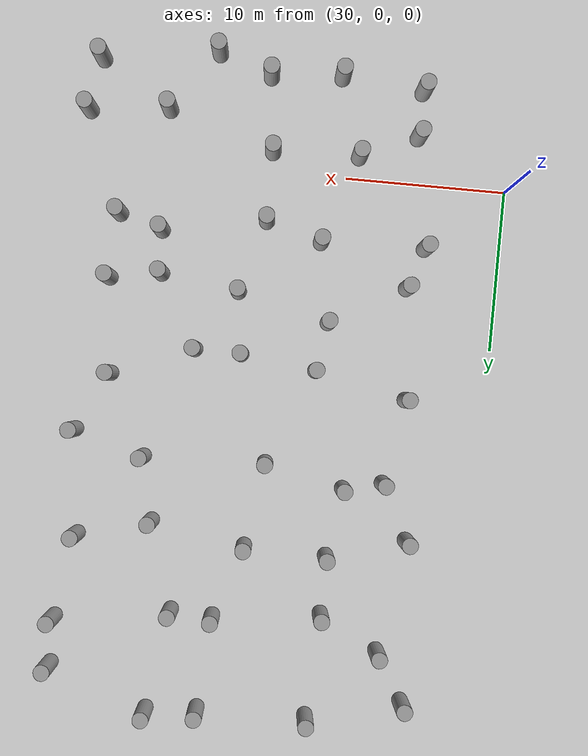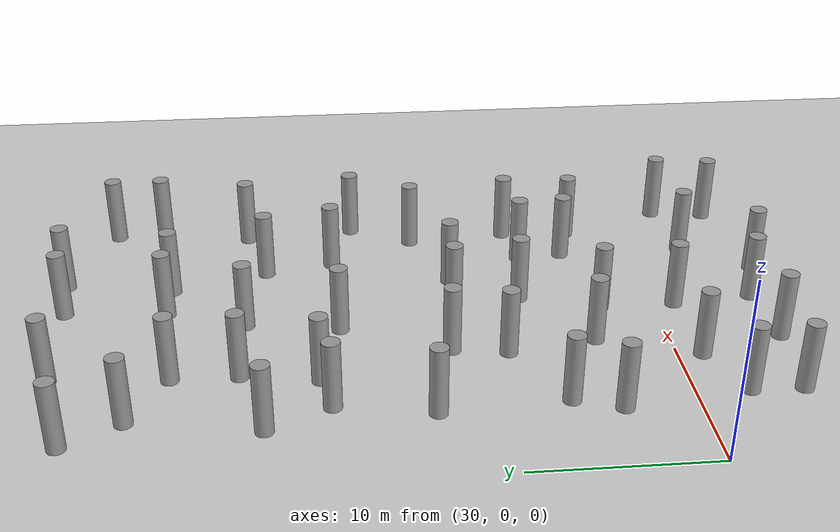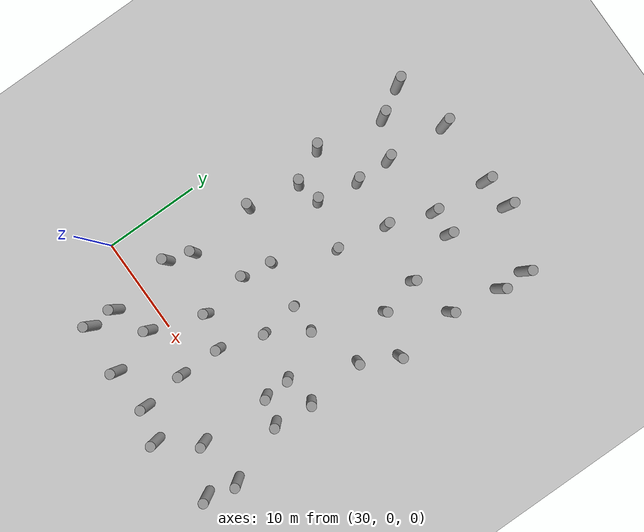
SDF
<sdf version="1.5">
 <world name="circle">
  <model name="ground">
   <static>1</static>
   <link name="link">
    <collision name="collision">
     <geometry><plane><normal>0 0 1</normal><size>100 100</size></plane></geometry>
     <surface><friction><ode><mu>100</mu><mu2>50</mu2></ode></friction></surface>
    </collision>
    <visual name="visual">
     <cast_shadows>0</cast_shadows>
     <geometry><plane><normal>0 0 1</normal><size>100 100</size></plane></geometry>
     <material>
      <script><uri>file://media/materials/scripts/gazebo.material</uri><name>Gazebo/Grey</name></script>
     </material>
    </visual>
    <velocity_decay><linear>0</linear><angular>0</angular></velocity_decay>
   </link>
  </model>
  <model name="unit_cylinder_81">
   <pose>35.6679056417 -5.77542004258 2 3e-06 4e-06 -0</pose>
   <static>1</static>
   <self_collide>1</self_collide>
   <link name="link">
    <inertial>
     <mass>1</mass>
     <inertia><ixx>0.145833</ixx><ixy>0</ixy><ixz>0</ixz><iyy>0.145833</iyy><iyz>0</iyz><izz>0.125</izz></inertia>
    </inertial>
    <collision name="collision">
     <geometry><cylinder><radius>0.5</radius><length>4</length></cylinder></geometry>
    </collision>
    <visual name="visual">
     <geometry><cylinder><radius>0.5</radius><length>4</length></cylinder></geometry>
     <material>
      <script><name>Gazebo/Grey</name><uri>file://media/materials/scripts/gazebo.material</uri></script>
     </material>
    </visual>
    <collision name="cyl_collision">
     <geometry><cylinder><radius>0.5</radius><length>4</length></cylinder></geometry>
    </collision>
    <sensor name="my_contact" type="contact">
     <contact><collision>cyl_collision</collision></contact>
     <update_rate>5</update_rate>
    </sensor>
   </link>
  </model>
  <model name="unit_cylinder_82">
   <pose>35.7263103291 -2.90438020218 2 3e-06 4e-06 -0</pose>
   <static>1</static>
   <self_collide>1</self_collide>
   <link name="link">
    <inertial>
     <mass>1</mass>
     <inertia><ixx>0.145833</ixx><ixy>0</ixy><ixz>0</ixz><iyy>0.145833</iyy><iyz>0</iyz><izz>0.125</izz></inertia>
    </inertial>
    <collision name="collision">
     <geometry><cylinder><radius>0.5</radius><length>4</length></cylinder></geometry>
    </collision>
    <visual name="visual">
     <geometry><cylinder><radius>0.5</radius><length>4</length></cylinder></geometry>
     <material>
      <script><name>Gazebo/Grey</name><uri>file://media/materials/scripts/gazebo.material</uri></script>
     </material>
    </visual>
    <collision name="cyl_collision">
     <geometry><cylinder><radius>0.5</radius><length>4</length></cylinder></geometry>
    </collision>
    <sensor name="my_contact" type="contact">
     <contact><collision>cyl_collision</collision></contact>
     <update_rate>5</update_rate>
    </sensor>
   </link>
  </model>
  <model name="unit_cylinder_83">
   <pose>34.7116669281 4.00510411653 2 3e-06 4e-06 -0</pose>
   <static>1</static>
   <self_collide>1</self_collide>
   <link name="link">
    <inertial>
     <mass>1</mass>
     <inertia><ixx>0.145833</ixx><ixy>0</ixy><ixz>0</ixz><iyy>0.145833</iyy><iyz>0</iyz><izz>0.125</izz></inertia>
    </inertial>
    <collision name="collision">
     <geometry><cylinder><radius>0.5</radius><length>4</length></cylinder></geometry>
    </collision>
    <visual name="visual">
     <geometry><cylinder><radius>0.5</radius><length>4</length></cylinder></geometry>
     <material>
      <script><name>Gazebo/Grey</name><uri>file://media/materials/scripts/gazebo.material</uri></script>
     </material>
    </visual>
    <collision name="cyl_collision">
     <geometry><cylinder><radius>0.5</radius><length>4</length></cylinder></geometry>
    </collision>
    <sensor name="my_contact" type="contact">
     <contact><collision>cyl_collision</collision></contact>
     <update_rate>5</update_rate>
    </sensor>
   </link>
  </model>
  <model name="unit_cylinder_84">
   <pose>35.6197564915 6.57755300147 2 3e-06 4e-06 -0</pose>
   <static>1</static>
   <self_collide>1</self_collide>
   <link name="link">
    <inertial>
     <mass>1</mass>
     <inertia><ixx>0.145833</ixx><ixy>0</ixy><ixz>0</ixz><iyy>0.145833</iyy><iyz>0</iyz><izz>0.125</izz></inertia>
    </inertial>
    <collision name="collision">
     <geometry><cylinder><radius>0.5</radius><length>4</length></cylinder></geometry>
    </collision>
    <visual name="visual">
     <geometry><cylinder><radius>0.5</radius><length>4</length></cylinder></geometry>
     <material>
      <script><name>Gazebo/Grey</name><uri>file://media/materials/scripts/gazebo.material</uri></script>
     </material>
    </visual>
    <collision name="cyl_collision">
     <geometry><cylinder><radius>0.5</radius><length>4</length></cylinder></geometry>
    </collision>
    <sensor name="my_contact" type="contact">
     <contact><collision>cyl_collision</collision></contact>
     <update_rate>5</update_rate>
    </sensor>
   </link>
  </model>
  <model name="unit_cylinder_85">
   <pose>35.0802317343 13.5566739813 2 3e-06 4e-06 -0</pose>
   <static>1</static>
   <self_collide>1</self_collide>
   <link name="link">
    <inertial>
     <mass>1</mass>
     <inertia><ixx>0.145833</ixx><ixy>0</ixy><ixz>0</ixz><iyy>0.145833</iyy><iyz>0</iyz><izz>0.125</izz></inertia>
    </inertial>
    <collision name="collision">
     <geometry><cylinder><radius>0.5</radius><length>4</length></cylinder></geometry>
    </collision>
    <visual name="visual">
     <geometry><cylinder><radius>0.5</radius><length>4</length></cylinder></geometry>
     <material>
      <script><name>Gazebo/Grey</name><uri>file://media/materials/scripts/gazebo.material</uri></script>
     </material>
    </visual>
    <collision name="cyl_collision">
     <geometry><cylinder><radius>0.5</radius><length>4</length></cylinder></geometry>
    </collision>
    <sensor name="my_contact" type="contact">
     <contact><collision>cyl_collision</collision></contact>
     <update_rate>5</update_rate>
    </sensor>
   </link>
  </model>
  <model name="unit_cylinder_86">
   <pose>36.0503890332 18.8871869542 2 3e-06 4e-06 -0</pose>
   <static>1</static>
   <self_collide>1</self_collide>
   <link name="link">
    <inertial>
     <mass>1</mass>
     <inertia><ixx>0.145833</ixx><ixy>0</ixy><ixz>0</ixz><iyy>0.145833</iyy><iyz>0</iyz><izz>0.125</izz></inertia>
    </inertial>
    <collision name="collision">
     <geometry><cylinder><radius>0.5</radius><length>4</length></cylinder></geometry>
    </collision>
    <visual name="visual">
     <geometry><cylinder><radius>0.5</radius><length>4</length></cylinder></geometry>
     <material>
      <script><name>Gazebo/Grey</name><uri>file://media/materials/scripts/gazebo.material</uri></script>
     </material>
    </visual>
    <collision name="cyl_collision">
     <geometry><cylinder><radius>0.5</radius><length>4</length></cylinder></geometry>
    </collision>
    <sensor name="my_contact" type="contact">
     <contact><collision>cyl_collision</collision></contact>
     <update_rate>5</update_rate>
    </sensor>
   </link>
  </model>
  <model name="unit_cylinder_87">
   <pose>34.2919485609 22.3360521421 2 3e-06 4e-06 -0</pose>
   <static>1</static>
   <self_collide>1</self_collide>
   <link name="link">
    <inertial>
     <mass>1</mass>
     <inertia><ixx>0.145833</ixx><ixy>0</ixy><ixz>0</ixz><iyy>0.145833</iyy><iyz>0</iyz><izz>0.125</izz></inertia>
    </inertial>
    <collision name="collision">
     <geometry><cylinder><radius>0.5</radius><length>4</length></cylinder></geometry>
    </collision>
    <visual name="visual">
     <geometry><cylinder><radius>0.5</radius><length>4</length></cylinder></geometry>
     <material>
      <script><name>Gazebo/Grey</name><uri>file://media/materials/scripts/gazebo.material</uri></script>
     </material>
    </visual>
    <collision name="cyl_collision">
     <geometry><cylinder><radius>0.5</radius><length>4</length></cylinder></geometry>
    </collision>
    <sensor name="my_contact" type="contact">
     <contact><collision>cyl_collision</collision></contact>
     <update_rate>5</update_rate>
    </sensor>
   </link>
  </model>
  <model name="unit_cylinder_88">
   <pose>35.5304291818 29.3945848965 2 3e-06 4e-06 -0</pose>
   <static>1</static>
   <self_collide>1</self_collide>
   <link name="link">
    <inertial>
     <mass>1</mass>
     <inertia><ixx>0.145833</ixx><ixy>0</ixy><ixz>0</ixz><iyy>0.145833</iyy><iyz>0</iyz><izz>0.125</izz></inertia>
    </inertial>
    <collision name="collision">
     <geometry><cylinder><radius>0.5</radius><length>4</length></cylinder></geometry>
    </collision>
    <visual name="visual">
     <geometry><cylinder><radius>0.5</radius><length>4</length></cylinder></geometry>
     <material>
      <script><name>Gazebo/Grey</name><uri>file://media/materials/scripts/gazebo.material</uri></script>
     </material>
    </visual>
    <collision name="cyl_collision">
     <geometry><cylinder><radius>0.5</radius><length>4</length></cylinder></geometry>
    </collision>
    <sensor name="my_contact" type="contact">
     <contact><collision>cyl_collision</collision></contact>
     <update_rate>5</update_rate>
    </sensor>
   </link>
  </model>
  <model name="unit_cylinder_89">
   <pose>33.7355179222 32.4193531505 2 3e-06 4e-06 -0</pose>
   <static>1</static>
   <self_collide>1</self_collide>
   <link name="link">
    <inertial>
     <mass>1</mass>
     <inertia><ixx>0.145833</ixx><ixy>0</ixy><ixz>0</ixz><iyy>0.145833</iyy><iyz>0</iyz><izz>0.125</izz></inertia>
    </inertial>
    <collision name="collision">
     <geometry><cylinder><radius>0.5</radius><length>4</length></cylinder></geometry>
    </collision>
    <visual name="visual">
     <geometry><cylinder><radius>0.5</radius><length>4</length></cylinder></geometry>
     <material>
      <script><name>Gazebo/Grey</name><uri>file://media/materials/scripts/gazebo.material</uri></script>
     </material>
    </visual>
    <collision name="cyl_collision">
     <geometry><cylinder><radius>0.5</radius><length>4</length></cylinder></geometry>
    </collision>
    <sensor name="my_contact" type="contact">
     <contact><collision>cyl_collision</collision></contact>
     <update_rate>5</update_rate>
    </sensor>
   </link>
  </model>
  <model name="unit_cylinder_96">
   <pose>40.7755859444 -6.25657437621 2 3e-06 4e-06 -0</pose>
   <static>1</static>
   <self_collide>1</self_collide>
   <link name="link">
    <inertial>
     <mass>1</mass>
     <inertia><ixx>0.145833</ixx><ixy>0</ixy><ixz>0</ixz><iyy>0.145833</iyy><iyz>0</iyz><izz>0.125</izz></inertia>
    </inertial>
    <collision name="collision">
     <geometry><cylinder><radius>0.5</radius><length>4</length></cylinder></geometry>
    </collision>
    <visual name="visual">
     <geometry><cylinder><radius>0.5</radius><length>4</length></cylinder></geometry>
     <material>
      <script><name>Gazebo/Grey</name><uri>file://media/materials/scripts/gazebo.material</uri></script>
     </material>
    </visual>
    <collision name="cyl_collision">
     <geometry><cylinder><radius>0.5</radius><length>4</length></cylinder></geometry>
    </collision>
    <sensor name="my_contact" type="contact">
     <contact><collision>cyl_collision</collision></contact>
     <update_rate>5</update_rate>
    </sensor>
   </link>
  </model>
  <model name="unit_cylinder_97">
   <pose>39.3007211047 -1.38284202193 2 3e-06 4e-06 -0</pose>
   <static>1</static>
   <self_collide>1</self_collide>
   <link name="link">
    <inertial>
     <mass>1</mass>
     <inertia><ixx>0.145833</ixx><ixy>0</ixy><ixz>0</ixz><iyy>0.145833</iyy><iyz>0</iyz><izz>0.125</izz></inertia>
    </inertial>
    <collision name="collision">
     <geometry><cylinder><radius>0.5</radius><length>4</length></cylinder></geometry>
    </collision>
    <visual name="visual">
     <geometry><cylinder><radius>0.5</radius><length>4</length></cylinder></geometry>
     <material>
      <script><name>Gazebo/Grey</name><uri>file://media/materials/scripts/gazebo.material</uri></script>
     </material>
    </visual>
    <collision name="cyl_collision">
     <geometry><cylinder><radius>0.5</radius><length>4</length></cylinder></geometry>
    </collision>
    <sensor name="my_contact" type="contact">
     <contact><collision>cyl_collision</collision></contact>
     <update_rate>5</update_rate>
    </sensor>
   </link>
  </model>
  <model name="unit_cylinder_98">
   <pose>41.2231888702 4.15944503703 2 3e-06 4e-06 -0</pose>
   <static>1</static>
   <self_collide>1</self_collide>
   <link name="link">
    <inertial>
     <mass>1</mass>
     <inertia><ixx>0.145833</ixx><ixy>0</ixy><ixz>0</ixz><iyy>0.145833</iyy><iyz>0</iyz><izz>0.125</izz></inertia>
    </inertial>
    <collision name="collision">
     <geometry><cylinder><radius>0.5</radius><length>4</length></cylinder></geometry>
    </collision>
    <visual name="visual">
     <geometry><cylinder><radius>0.5</radius><length>4</length></cylinder></geometry>
     <material>
      <script><name>Gazebo/Grey</name><uri>file://media/materials/scripts/gazebo.material</uri></script>
     </material>
    </visual>
    <collision name="cyl_collision">
     <geometry><cylinder><radius>0.5</radius><length>4</length></cylinder></geometry>
    </collision>
    <sensor name="my_contact" type="contact">
     <contact><collision>cyl_collision</collision></contact>
     <update_rate>5</update_rate>
    </sensor>
   </link>
  </model>
  <model name="unit_cylinder_99">
   <pose>40.3456004214 9.14816743767 2 3e-06 4e-06 -0</pose>
   <static>1</static>
   <self_collide>1</self_collide>
   <link name="link">
    <inertial>
     <mass>1</mass>
     <inertia><ixx>0.145833</ixx><ixy>0</ixy><ixz>0</ixz><iyy>0.145833</iyy><iyz>0</iyz><izz>0.125</izz></inertia>
    </inertial>
    <collision name="collision">
     <geometry><cylinder><radius>0.5</radius><length>4</length></cylinder></geometry>
    </collision>
    <visual name="visual">
     <geometry><cylinder><radius>0.5</radius><length>4</length></cylinder></geometry>
     <material>
      <script><name>Gazebo/Grey</name><uri>file://media/materials/scripts/gazebo.material</uri></script>
     </material>
    </visual>
    <collision name="cyl_collision">
     <geometry><cylinder><radius>0.5</radius><length>4</length></cylinder></geometry>
    </collision>
    <sensor name="my_contact" type="contact">
     <contact><collision>cyl_collision</collision></contact>
     <update_rate>5</update_rate>
    </sensor>
   </link>
  </model>
  <model name="unit_cylinder_100">
   <pose>40.8603254077 12.2200159221 2 3e-06 4e-06 -0</pose>
   <static>1</static>
   <self_collide>1</self_collide>
   <link name="link">
    <inertial>
     <mass>1</mass>
     <inertia><ixx>0.145833</ixx><ixy>0</ixy><ixz>0</ixz><iyy>0.145833</iyy><iyz>0</iyz><izz>0.125</izz></inertia>
    </inertial>
    <collision name="collision">
     <geometry><cylinder><radius>0.5</radius><length>4</length></cylinder></geometry>
    </collision>
    <visual name="visual">
     <geometry><cylinder><radius>0.5</radius><length>4</length></cylinder></geometry>
     <material>
      <script><name>Gazebo/Grey</name><uri>file://media/materials/scripts/gazebo.material</uri></script>
     </material>
    </visual>
    <collision name="cyl_collision">
     <geometry><cylinder><radius>0.5</radius><length>4</length></cylinder></geometry>
    </collision>
    <sensor name="my_contact" type="contact">
     <contact><collision>cyl_collision</collision></contact>
     <update_rate>5</update_rate>
    </sensor>
   </link>
  </model>
  <model name="unit_cylinder_101">
   <pose>38.523181458 19.4359597811 2 3e-06 4e-06 -0</pose>
   <static>1</static>
   <self_collide>1</self_collide>
   <link name="link">
    <inertial>
     <mass>1</mass>
     <inertia><ixx>0.145833</ixx><ixy>0</ixy><ixz>0</ixz><iyy>0.145833</iyy><iyz>0</iyz><izz>0.125</izz></inertia>
    </inertial>
    <collision name="collision">
     <geometry><cylinder><radius>0.5</radius><length>4</length></cylinder></geometry>
    </collision>
    <visual name="visual">
     <geometry><cylinder><radius>0.5</radius><length>4</length></cylinder></geometry>
     <material>
      <script><name>Gazebo/Grey</name><uri>file://media/materials/scripts/gazebo.material</uri></script>
     </material>
    </visual>
    <collision name="cyl_collision">
     <geometry><cylinder><radius>0.5</radius><length>4</length></cylinder></geometry>
    </collision>
    <sensor name="my_contact" type="contact">
     <contact><collision>cyl_collision</collision></contact>
     <update_rate>5</update_rate>
    </sensor>
   </link>
  </model>
  <model name="unit_cylinder_102">
   <pose>39.2182623341 23.7290542533 2 3e-06 4e-06 -0</pose>
   <static>1</static>
   <self_collide>1</self_collide>
   <link name="link">
    <inertial>
     <mass>1</mass>
     <inertia><ixx>0.145833</ixx><ixy>0</ixy><ixz>0</ixz><iyy>0.145833</iyy><iyz>0</iyz><izz>0.125</izz></inertia>
    </inertial>
    <collision name="collision">
     <geometry><cylinder><radius>0.5</radius><length>4</length></cylinder></geometry>
    </collision>
    <visual name="visual">
     <geometry><cylinder><radius>0.5</radius><length>4</length></cylinder></geometry>
     <material>
      <script><name>Gazebo/Grey</name><uri>file://media/materials/scripts/gazebo.material</uri></script>
     </material>
    </visual>
    <collision name="cyl_collision">
     <geometry><cylinder><radius>0.5</radius><length>4</length></cylinder></geometry>
    </collision>
    <sensor name="my_contact" type="contact">
     <contact><collision>cyl_collision</collision></contact>
     <update_rate>5</update_rate>
    </sensor>
   </link>
  </model>
  <model name="unit_cylinder_103">
   <pose>39.22450284 27.395508864 2 3e-06 4e-06 -0</pose>
   <static>1</static>
   <self_collide>1</self_collide>
   <link name="link">
    <inertial>
     <mass>1</mass>
     <inertia><ixx>0.145833</ixx><ixy>0</ixy><ixz>0</ixz><iyy>0.145833</iyy><iyz>0</iyz><izz>0.125</izz></inertia>
    </inertial>
    <collision name="collision">
     <geometry><cylinder><radius>0.5</radius><length>4</length></cylinder></geometry>
    </collision>
    <visual name="visual">
     <geometry><cylinder><radius>0.5</radius><length>4</length></cylinder></geometry>
     <material>
      <script><name>Gazebo/Grey</name><uri>file://media/materials/scripts/gazebo.material</uri></script>
     </material>
    </visual>
    <collision name="cyl_collision">
     <geometry><cylinder><radius>0.5</radius><length>4</length></cylinder></geometry>
    </collision>
    <sensor name="my_contact" type="contact">
     <contact><collision>cyl_collision</collision></contact>
     <update_rate>5</update_rate>
    </sensor>
   </link>
  </model>
  <model name="unit_cylinder_104">
   <pose>39.6252936841 33.8614767986 2 3e-06 4e-06 -0</pose>
   <static>1</static>
   <self_collide>1</self_collide>
   <link name="link">
    <inertial>
     <mass>1</mass>
     <inertia><ixx>0.145833</ixx><ixy>0</ixy><ixz>0</ixz><iyy>0.145833</iyy><iyz>0</iyz><izz>0.125</izz></inertia>
    </inertial>
    <collision name="collision">
     <geometry><cylinder><radius>0.5</radius><length>4</length></cylinder></geometry>
    </collision>
    <visual name="visual">
     <geometry><cylinder><radius>0.5</radius><length>4</length></cylinder></geometry>
     <material>
      <script><name>Gazebo/Grey</name><uri>file://media/materials/scripts/gazebo.material</uri></script>
     </material>
    </visual>
    <collision name="cyl_collision">
     <geometry><cylinder><radius>0.5</radius><length>4</length></cylinder></geometry>
    </collision>
    <sensor name="my_contact" type="contact">
     <contact><collision>cyl_collision</collision></contact>
     <update_rate>5</update_rate>
    </sensor>
   </link>
  </model>
  <model name="unit_cylinder_111">
   <pose>45.2180552925 -5.92310617465 2 3e-06 4e-06 -0</pose>
   <static>1</static>
   <self_collide>1</self_collide>
   <link name="link">
    <inertial>
     <mass>1</mass>
     <inertia><ixx>0.145833</ixx><ixy>0</ixy><ixz>0</ixz><iyy>0.145833</iyy><iyz>0</iyz><izz>0.125</izz></inertia>
    </inertial>
    <collision name="collision">
     <geometry><cylinder><radius>0.5</radius><length>4</length></cylinder></geometry>
    </collision>
    <visual name="visual">
     <geometry><cylinder><radius>0.5</radius><length>4</length></cylinder></geometry>
     <material>
      <script><name>Gazebo/Grey</name><uri>file://media/materials/scripts/gazebo.material</uri></script>
     </material>
    </visual>
    <collision name="cyl_collision">
     <geometry><cylinder><radius>0.5</radius><length>4</length></cylinder></geometry>
    </collision>
    <sensor name="my_contact" type="contact">
     <contact><collision>cyl_collision</collision></contact>
     <update_rate>5</update_rate>
    </sensor>
   </link>
  </model>
  <model name="unit_cylinder_112">
   <pose>44.7206645837 -1.22734781911 2 3e-06 4e-06 -0</pose>
   <static>1</static>
   <self_collide>1</self_collide>
   <link name="link">
    <inertial>
     <mass>1</mass>
     <inertia><ixx>0.145833</ixx><ixy>0</ixy><ixz>0</ixz><iyy>0.145833</iyy><iyz>0</iyz><izz>0.125</izz></inertia>
    </inertial>
    <collision name="collision">
     <geometry><cylinder><radius>0.5</radius><length>4</length></cylinder></geometry>
    </collision>
    <visual name="visual">
     <geometry><cylinder><radius>0.5</radius><length>4</length></cylinder></geometry>
     <material>
      <script><name>Gazebo/Grey</name><uri>file://media/materials/scripts/gazebo.material</uri></script>
     </material>
    </visual>
    <collision name="cyl_collision">
     <geometry><cylinder><radius>0.5</radius><length>4</length></cylinder></geometry>
    </collision>
    <sensor name="my_contact" type="contact">
     <contact><collision>cyl_collision</collision></contact>
     <update_rate>5</update_rate>
    </sensor>
   </link>
  </model>
  <model name="unit_cylinder_113">
   <pose>44.7268193166 3.12864957752 2 3e-06 4e-06 -0</pose>
   <static>1</static>
   <self_collide>1</self_collide>
   <link name="link">
    <inertial>
     <mass>1</mass>
     <inertia><ixx>0.145833</ixx><ixy>0</ixy><ixz>0</ixz><iyy>0.145833</iyy><iyz>0</iyz><izz>0.125</izz></inertia>
    </inertial>
    <collision name="collision">
     <geometry><cylinder><radius>0.5</radius><length>4</length></cylinder></geometry>
    </collision>
    <visual name="visual">
     <geometry><cylinder><radius>0.5</radius><length>4</length></cylinder></geometry>
     <material>
      <script><name>Gazebo/Grey</name><uri>file://media/materials/scripts/gazebo.material</uri></script>
     </material>
    </visual>
    <collision name="cyl_collision">
     <geometry><cylinder><radius>0.5</radius><length>4</length></cylinder></geometry>
    </collision>
    <sensor name="my_contact" type="contact">
     <contact><collision>cyl_collision</collision></contact>
     <update_rate>5</update_rate>
    </sensor>
   </link>
  </model>
  <model name="unit_cylinder_114">
   <pose>46.103092692 7.68619504246 2 3e-06 4e-06 -0</pose>
   <static>1</static>
   <self_collide>1</self_collide>
   <link name="link">
    <inertial>
     <mass>1</mass>
     <inertia><ixx>0.145833</ixx><ixy>0</ixy><ixz>0</ixz><iyy>0.145833</iyy><iyz>0</iyz><izz>0.125</izz></inertia>
    </inertial>
    <collision name="collision">
     <geometry><cylinder><radius>0.5</radius><length>4</length></cylinder></geometry>
    </collision>
    <visual name="visual">
     <geometry><cylinder><radius>0.5</radius><length>4</length></cylinder></geometry>
     <material>
      <script><name>Gazebo/Grey</name><uri>file://media/materials/scripts/gazebo.material</uri></script>
     </material>
    </visual>
    <collision name="cyl_collision">
     <geometry><cylinder><radius>0.5</radius><length>4</length></cylinder></geometry>
    </collision>
    <sensor name="my_contact" type="contact">
     <contact><collision>cyl_collision</collision></contact>
     <update_rate>5</update_rate>
    </sensor>
   </link>
  </model>
  <model name="unit_cylinder_115">
   <pose>45.5978227257 11.590894487 2 3e-06 4e-06 -0</pose>
   <static>1</static>
   <self_collide>1</self_collide>
   <link name="link">
    <inertial>
     <mass>1</mass>
     <inertia><ixx>0.145833</ixx><ixy>0</ixy><ixz>0</ixz><iyy>0.145833</iyy><iyz>0</iyz><izz>0.125</izz></inertia>
    </inertial>
    <collision name="collision">
     <geometry><cylinder><radius>0.5</radius><length>4</length></cylinder></geometry>
    </collision>
    <visual name="visual">
     <geometry><cylinder><radius>0.5</radius><length>4</length></cylinder></geometry>
     <material>
      <script><name>Gazebo/Grey</name><uri>file://media/materials/scripts/gazebo.material</uri></script>
     </material>
    </visual>
    <collision name="cyl_collision">
     <geometry><cylinder><radius>0.5</radius><length>4</length></cylinder></geometry>
    </collision>
    <sensor name="my_contact" type="contact">
     <contact><collision>cyl_collision</collision></contact>
     <update_rate>5</update_rate>
    </sensor>
   </link>
  </model>
  <model name="unit_cylinder_116">
   <pose>43.5087032859 18.2419314645 2 3e-06 4e-06 -0</pose>
   <static>1</static>
   <self_collide>1</self_collide>
   <link name="link">
    <inertial>
     <mass>1</mass>
     <inertia><ixx>0.145833</ixx><ixy>0</ixy><ixz>0</ixz><iyy>0.145833</iyy><iyz>0</iyz><izz>0.125</izz></inertia>
    </inertial>
    <collision name="collision">
     <geometry><cylinder><radius>0.5</radius><length>4</length></cylinder></geometry>
    </collision>
    <visual name="visual">
     <geometry><cylinder><radius>0.5</radius><length>4</length></cylinder></geometry>
     <material>
      <script><name>Gazebo/Grey</name><uri>file://media/materials/scripts/gazebo.material</uri></script>
     </material>
    </visual>
    <collision name="cyl_collision">
     <geometry><cylinder><radius>0.5</radius><length>4</length></cylinder></geometry>
    </collision>
    <sensor name="my_contact" type="contact">
     <contact><collision>cyl_collision</collision></contact>
     <update_rate>5</update_rate>
    </sensor>
   </link>
  </model>
  <model name="unit_cylinder_117">
   <pose>44.3696159318 23.5488141204 2 3e-06 4e-06 -0</pose>
   <static>1</static>
   <self_collide>1</self_collide>
   <link name="link">
    <inertial>
     <mass>1</mass>
     <inertia><ixx>0.145833</ixx><ixy>0</ixy><ixz>0</ixz><iyy>0.145833</iyy><iyz>0</iyz><izz>0.125</izz></inertia>
    </inertial>
    <collision name="collision">
     <geometry><cylinder><radius>0.5</radius><length>4</length></cylinder></geometry>
    </collision>
    <visual name="visual">
     <geometry><cylinder><radius>0.5</radius><length>4</length></cylinder></geometry>
     <material>
      <script><name>Gazebo/Grey</name><uri>file://media/materials/scripts/gazebo.material</uri></script>
     </material>
    </visual>
    <collision name="cyl_collision">
     <geometry><cylinder><radius>0.5</radius><length>4</length></cylinder></geometry>
    </collision>
    <sensor name="my_contact" type="contact">
     <contact><collision>cyl_collision</collision></contact>
     <update_rate>5</update_rate>
    </sensor>
   </link>
  </model>
  <model name="unit_cylinder_118">
   <pose>45.9830754507 28.1023713864 2 3e-06 4e-06 -0</pose>
   <static>1</static>
   <self_collide>1</self_collide>
   <link name="link">
    <inertial>
     <mass>1</mass>
     <inertia><ixx>0.145833</ixx><ixy>0</ixy><ixz>0</ixz><iyy>0.145833</iyy><iyz>0</iyz><izz>0.125</izz></inertia>
    </inertial>
    <collision name="collision">
     <geometry><cylinder><radius>0.5</radius><length>4</length></cylinder></geometry>
    </collision>
    <visual name="visual">
     <geometry><cylinder><radius>0.5</radius><length>4</length></cylinder></geometry>
     <material>
      <script><name>Gazebo/Grey</name><uri>file://media/materials/scripts/gazebo.material</uri></script>
     </material>
    </visual>
    <collision name="cyl_collision">
     <geometry><cylinder><radius>0.5</radius><length>4</length></cylinder></geometry>
    </collision>
    <sensor name="my_contact" type="contact">
     <contact><collision>cyl_collision</collision></contact>
     <update_rate>5</update_rate>
    </sensor>
   </link>
  </model>
  <model name="unit_cylinder_119">
   <pose>46.4542948218 33.9674066257 2 3e-06 4e-06 -0</pose>
   <static>1</static>
   <self_collide>1</self_collide>
   <link name="link">
    <inertial>
     <mass>1</mass>
     <inertia><ixx>0.145833</ixx><ixy>0</ixy><ixz>0</ixz><iyy>0.145833</iyy><iyz>0</iyz><izz>0.125</izz></inertia>
    </inertial>
    <collision name="collision">
     <geometry><cylinder><radius>0.5</radius><length>4</length></cylinder></geometry>
    </collision>
    <visual name="visual">
     <geometry><cylinder><radius>0.5</radius><length>4</length></cylinder></geometry>
     <material>
      <script><name>Gazebo/Grey</name><uri>file://media/materials/scripts/gazebo.material</uri></script>
     </material>
    </visual>
    <collision name="cyl_collision">
     <geometry><cylinder><radius>0.5</radius><length>4</length></cylinder></geometry>
    </collision>
    <sensor name="my_contact" type="contact">
     <contact><collision>cyl_collision</collision></contact>
     <update_rate>5</update_rate>
    </sensor>
   </link>
  </model>
  <model name="unit_cylinder_126">
   <pose>48.5535509362 -7.08814719624 2 3e-06 4e-06 -0</pose>
   <static>1</static>
   <self_collide>1</self_collide>
   <link name="link">
    <inertial>
     <mass>1</mass>
     <inertia><ixx>0.145833</ixx><ixy>0</ixy><ixz>0</ixz><iyy>0.145833</iyy><iyz>0</iyz><izz>0.125</izz></inertia>
    </inertial>
    <collision name="collision">
     <geometry><cylinder><radius>0.5</radius><length>4</length></cylinder></geometry>
    </collision>
    <visual name="visual">
     <geometry><cylinder><radius>0.5</radius><length>4</length></cylinder></geometry>
     <material>
      <script><name>Gazebo/Grey</name><uri>file://media/materials/scripts/gazebo.material</uri></script>
     </material>
    </visual>
    <collision name="cyl_collision">
     <geometry><cylinder><radius>0.5</radius><length>4</length></cylinder></geometry>
    </collision>
    <sensor name="my_contact" type="contact">
     <contact><collision>cyl_collision</collision></contact>
     <update_rate>5</update_rate>
    </sensor>
   </link>
  </model>
  <model name="unit_cylinder_127">
   <pose>51.3671489111 -3.31135918351 2 3e-06 4e-06 -0</pose>
   <static>1</static>
   <self_collide>1</self_collide>
   <link name="link">
    <inertial>
     <mass>1</mass>
     <inertia><ixx>0.145833</ixx><ixy>0</ixy><ixz>0</ixz><iyy>0.145833</iyy><iyz>0</iyz><izz>0.125</izz></inertia>
    </inertial>
    <collision name="collision">
     <geometry><cylinder><radius>0.5</radius><length>4</length></cylinder></geometry>
    </collision>
    <visual name="visual">
     <geometry><cylinder><radius>0.5</radius><length>4</length></cylinder></geometry>
     <material>
      <script><name>Gazebo/Grey</name><uri>file://media/materials/scripts/gazebo.material</uri></script>
     </material>
    </visual>
    <collision name="cyl_collision">
     <geometry><cylinder><radius>0.5</radius><length>4</length></cylinder></geometry>
    </collision>
    <sensor name="my_contact" type="contact">
     <contact><collision>cyl_collision</collision></contact>
     <update_rate>5</update_rate>
    </sensor>
   </link>
  </model>
  <model name="unit_cylinder_128">
   <pose>51.2308198335 4.26325609476 2 3e-06 4e-06 -0</pose>
   <static>1</static>
   <self_collide>1</self_collide>
   <link name="link">
    <inertial>
     <mass>1</mass>
     <inertia><ixx>0.145833</ixx><ixy>0</ixy><ixz>0</ixz><iyy>0.145833</iyy><iyz>0</iyz><izz>0.125</izz></inertia>
    </inertial>
    <collision name="collision">
     <geometry><cylinder><radius>0.5</radius><length>4</length></cylinder></geometry>
    </collision>
    <visual name="visual">
     <geometry><cylinder><radius>0.5</radius><length>4</length></cylinder></geometry>
     <material>
      <script><name>Gazebo/Grey</name><uri>file://media/materials/scripts/gazebo.material</uri></script>
     </material>
    </visual>
    <collision name="cyl_collision">
     <geometry><cylinder><radius>0.5</radius><length>4</length></cylinder></geometry>
    </collision>
    <sensor name="my_contact" type="contact">
     <contact><collision>cyl_collision</collision></contact>
     <update_rate>5</update_rate>
    </sensor>
   </link>
  </model>
  <model name="unit_cylinder_129">
   <pose>51.0292293405 6.96864109769 2 3e-06 4e-06 -0</pose>
   <static>1</static>
   <self_collide>1</self_collide>
   <link name="link">
    <inertial>
     <mass>1</mass>
     <inertia><ixx>0.145833</ixx><ixy>0</ixy><ixz>0</ixz><iyy>0.145833</iyy><iyz>0</iyz><izz>0.125</izz></inertia>
    </inertial>
    <collision name="collision">
     <geometry><cylinder><radius>0.5</radius><length>4</length></cylinder></geometry>
    </collision>
    <visual name="visual">
     <geometry><cylinder><radius>0.5</radius><length>4</length></cylinder></geometry>
     <material>
      <script><name>Gazebo/Grey</name><uri>file://media/materials/scripts/gazebo.material</uri></script>
     </material>
    </visual>
    <collision name="cyl_collision">
     <geometry><cylinder><radius>0.5</radius><length>4</length></cylinder></geometry>
    </collision>
    <sensor name="my_contact" type="contact">
     <contact><collision>cyl_collision</collision></contact>
     <update_rate>5</update_rate>
    </sensor>
   </link>
  </model>
  <model name="unit_cylinder_130">
   <pose>48.5220555371 11.5272876935 2 3e-06 4e-06 -0</pose>
   <static>1</static>
   <self_collide>1</self_collide>
   <link name="link">
    <inertial>
     <mass>1</mass>
     <inertia><ixx>0.145833</ixx><ixy>0</ixy><ixz>0</ixz><iyy>0.145833</iyy><iyz>0</iyz><izz>0.125</izz></inertia>
    </inertial>
    <collision name="collision">
     <geometry><cylinder><radius>0.5</radius><length>4</length></cylinder></geometry>
    </collision>
    <visual name="visual">
     <geometry><cylinder><radius>0.5</radius><length>4</length></cylinder></geometry>
     <material>
      <script><name>Gazebo/Grey</name><uri>file://media/materials/scripts/gazebo.material</uri></script>
     </material>
    </visual>
    <collision name="cyl_collision">
     <geometry><cylinder><radius>0.5</radius><length>4</length></cylinder></geometry>
    </collision>
    <sensor name="my_contact" type="contact">
     <contact><collision>cyl_collision</collision></contact>
     <update_rate>5</update_rate>
    </sensor>
   </link>
  </model>
  <model name="unit_cylinder_131">
   <pose>51.1612378467 18.5054300248 2 3e-06 4e-06 -0</pose>
   <static>1</static>
   <self_collide>1</self_collide>
   <link name="link">
    <inertial>
     <mass>1</mass>
     <inertia><ixx>0.145833</ixx><ixy>0</ixy><ixz>0</ixz><iyy>0.145833</iyy><iyz>0</iyz><izz>0.125</izz></inertia>
    </inertial>
    <collision name="collision">
     <geometry><cylinder><radius>0.5</radius><length>4</length></cylinder></geometry>
    </collision>
    <visual name="visual">
     <geometry><cylinder><radius>0.5</radius><length>4</length></cylinder></geometry>
     <material>
      <script><name>Gazebo/Grey</name><uri>file://media/materials/scripts/gazebo.material</uri></script>
     </material>
    </visual>
    <collision name="cyl_collision">
     <geometry><cylinder><radius>0.5</radius><length>4</length></cylinder></geometry>
    </collision>
    <sensor name="my_contact" type="contact">
     <contact><collision>cyl_collision</collision></contact>
     <update_rate>5</update_rate>
    </sensor>
   </link>
  </model>
  <model name="unit_cylinder_132">
   <pose>50.2971076823 22.4771663791 2 3e-06 4e-06 -0</pose>
   <static>1</static>
   <self_collide>1</self_collide>
   <link name="link">
    <inertial>
     <mass>1</mass>
     <inertia><ixx>0.145833</ixx><ixy>0</ixy><ixz>0</ixz><iyy>0.145833</iyy><iyz>0</iyz><izz>0.125</izz></inertia>
    </inertial>
    <collision name="collision">
     <geometry><cylinder><radius>0.5</radius><length>4</length></cylinder></geometry>
    </collision>
    <visual name="visual">
     <geometry><cylinder><radius>0.5</radius><length>4</length></cylinder></geometry>
     <material>
      <script><name>Gazebo/Grey</name><uri>file://media/materials/scripts/gazebo.material</uri></script>
     </material>
    </visual>
    <collision name="cyl_collision">
     <geometry><cylinder><radius>0.5</radius><length>4</length></cylinder></geometry>
    </collision>
    <sensor name="my_contact" type="contact">
     <contact><collision>cyl_collision</collision></contact>
     <update_rate>5</update_rate>
    </sensor>
   </link>
  </model>
  <model name="unit_cylinder_133">
   <pose>48.6066538753 27.9673389506 2 3e-06 4e-06 -0</pose>
   <static>1</static>
   <self_collide>1</self_collide>
   <link name="link">
    <inertial>
     <mass>1</mass>
     <inertia><ixx>0.145833</ixx><ixy>0</ixy><ixz>0</ixz><iyy>0.145833</iyy><iyz>0</iyz><izz>0.125</izz></inertia>
    </inertial>
    <collision name="collision">
     <geometry><cylinder><radius>0.5</radius><length>4</length></cylinder></geometry>
    </collision>
    <visual name="visual">
     <geometry><cylinder><radius>0.5</radius><length>4</length></cylinder></geometry>
     <material>
      <script><name>Gazebo/Grey</name><uri>file://media/materials/scripts/gazebo.material</uri></script>
     </material>
    </visual>
    <collision name="cyl_collision">
     <geometry><cylinder><radius>0.5</radius><length>4</length></cylinder></geometry>
    </collision>
    <sensor name="my_contact" type="contact">
     <contact><collision>cyl_collision</collision></contact>
     <update_rate>5</update_rate>
    </sensor>
   </link>
  </model>
  <model name="unit_cylinder_134">
   <pose>49.6547559517 34.2879086367 2 3e-06 4e-06 -0</pose>
   <static>1</static>
   <self_collide>1</self_collide>
   <link name="link">
    <inertial>
     <mass>1</mass>
     <inertia><ixx>0.145833</ixx><ixy>0</ixy><ixz>0</ixz><iyy>0.145833</iyy><iyz>0</iyz><izz>0.125</izz></inertia>
    </inertial>
    <collision name="collision">
     <geometry><cylinder><radius>0.5</radius><length>4</length></cylinder></geometry>
    </collision>
    <visual name="visual">
     <geometry><cylinder><radius>0.5</radius><length>4</length></cylinder></geometry>
     <material>
      <script><name>Gazebo/Grey</name><uri>file://media/materials/scripts/gazebo.material</uri></script>
     </material>
    </visual>
    <collision name="cyl_collision">
     <geometry><cylinder><radius>0.5</radius><length>4</length></cylinder></geometry>
    </collision>
    <sensor name="my_contact" type="contact">
     <contact><collision>cyl_collision</collision></contact>
     <update_rate>5</update_rate>
    </sensor>
   </link>
  </model>
  <model name="unit_cylinder_141">
   <pose>55.8045771555 -6.12321325654 2 3e-06 4e-06 -0</pose>
   <static>1</static>
   <self_collide>1</self_collide>
   <link name="link">
    <inertial>
     <mass>1</mass>
     <inertia><ixx>0.145833</ixx><ixy>0</ixy><ixz>0</ixz><iyy>0.145833</iyy><iyz>0</iyz><izz>0.125</izz></inertia>
    </inertial>
    <collision name="collision">
     <geometry><cylinder><radius>0.5</radius><length>4</length></cylinder></geometry>
    </collision>
    <visual name="visual">
     <geometry><cylinder><radius>0.5</radius><length>4</length></cylinder></geometry>
     <material>
      <script><name>Gazebo/Grey</name><uri>file://media/materials/scripts/gazebo.material</uri></script>
     </material>
    </visual>
    <collision name="cyl_collision">
     <geometry><cylinder><radius>0.5</radius><length>4</length></cylinder></geometry>
    </collision>
    <sensor name="my_contact" type="contact">
     <contact><collision>cyl_collision</collision></contact>
     <update_rate>5</update_rate>
    </sensor>
   </link>
  </model>
  <model name="unit_cylinder_142">
   <pose>56.357248471 -2.85614910594 2 3e-06 4e-06 -0</pose>
   <static>1</static>
   <self_collide>1</self_collide>
   <link name="link">
    <inertial>
     <mass>1</mass>
     <inertia><ixx>0.145833</ixx><ixy>0</ixy><ixz>0</ixz><iyy>0.145833</iyy><iyz>0</iyz><izz>0.125</izz></inertia>
    </inertial>
    <collision name="collision">
     <geometry><cylinder><radius>0.5</radius><length>4</length></cylinder></geometry>
    </collision>
    <visual name="visual">
     <geometry><cylinder><radius>0.5</radius><length>4</length></cylinder></geometry>
     <material>
      <script><name>Gazebo/Grey</name><uri>file://media/materials/scripts/gazebo.material</uri></script>
     </material>
    </visual>
    <collision name="cyl_collision">
     <geometry><cylinder><radius>0.5</radius><length>4</length></cylinder></geometry>
    </collision>
    <sensor name="my_contact" type="contact">
     <contact><collision>cyl_collision</collision></contact>
     <update_rate>5</update_rate>
    </sensor>
   </link>
  </model>
  <model name="unit_cylinder_143">
   <pose>53.9423226412 3.44129151425 2 3e-06 4e-06 -0</pose>
   <static>1</static>
   <self_collide>1</self_collide>
   <link name="link">
    <inertial>
     <mass>1</mass>
     <inertia><ixx>0.145833</ixx><ixy>0</ixy><ixz>0</ixz><iyy>0.145833</iyy><iyz>0</iyz><izz>0.125</izz></inertia>
    </inertial>
    <collision name="collision">
     <geometry><cylinder><radius>0.5</radius><length>4</length></cylinder></geometry>
    </collision>
    <visual name="visual">
     <geometry><cylinder><radius>0.5</radius><length>4</length></cylinder></geometry>
     <material>
      <script><name>Gazebo/Grey</name><uri>file://media/materials/scripts/gazebo.material</uri></script>
     </material>
    </visual>
    <collision name="cyl_collision">
     <geometry><cylinder><radius>0.5</radius><length>4</length></cylinder></geometry>
    </collision>
    <sensor name="my_contact" type="contact">
     <contact><collision>cyl_collision</collision></contact>
     <update_rate>5</update_rate>
    </sensor>
   </link>
  </model>
  <model name="unit_cylinder_144">
   <pose>54.2517694206 7.49794452463 2 3e-06 4e-06 -0</pose>
   <static>1</static>
   <self_collide>1</self_collide>
   <link name="link">
    <inertial>
     <mass>1</mass>
     <inertia><ixx>0.145833</ixx><ixy>0</ixy><ixz>0</ixz><iyy>0.145833</iyy><iyz>0</iyz><izz>0.125</izz></inertia>
    </inertial>
    <collision name="collision">
     <geometry><cylinder><radius>0.5</radius><length>4</length></cylinder></geometry>
    </collision>
    <visual name="visual">
     <geometry><cylinder><radius>0.5</radius><length>4</length></cylinder></geometry>
     <material>
      <script><name>Gazebo/Grey</name><uri>file://media/materials/scripts/gazebo.material</uri></script>
     </material>
    </visual>
    <collision name="cyl_collision">
     <geometry><cylinder><radius>0.5</radius><length>4</length></cylinder></geometry>
    </collision>
    <sensor name="my_contact" type="contact">
     <contact><collision>cyl_collision</collision></contact>
     <update_rate>5</update_rate>
    </sensor>
   </link>
  </model>
  <model name="unit_cylinder_145">
   <pose>53.6737199694 13.4837659427 2 3e-06 4e-06 -0</pose>
   <static>1</static>
   <self_collide>1</self_collide>
   <link name="link">
    <inertial>
     <mass>1</mass>
     <inertia><ixx>0.145833</ixx><ixy>0</ixy><ixz>0</ixz><iyy>0.145833</iyy><iyz>0</iyz><izz>0.125</izz></inertia>
    </inertial>
    <collision name="collision">
     <geometry><cylinder><radius>0.5</radius><length>4</length></cylinder></geometry>
    </collision>
    <visual name="visual">
     <geometry><cylinder><radius>0.5</radius><length>4</length></cylinder></geometry>
     <material>
      <script><name>Gazebo/Grey</name><uri>file://media/materials/scripts/gazebo.material</uri></script>
     </material>
    </visual>
    <collision name="cyl_collision">
     <geometry><cylinder><radius>0.5</radius><length>4</length></cylinder></geometry>
    </collision>
    <sensor name="my_contact" type="contact">
     <contact><collision>cyl_collision</collision></contact>
     <update_rate>5</update_rate>
    </sensor>
   </link>
  </model>
  <model name="unit_cylinder_146">
   <pose>55.5677208039 17.1725107092 2 3e-06 4e-06 -0</pose>
   <static>1</static>
   <self_collide>1</self_collide>
   <link name="link">
    <inertial>
     <mass>1</mass>
     <inertia><ixx>0.145833</ixx><ixy>0</ixy><ixz>0</ixz><iyy>0.145833</iyy><iyz>0</iyz><izz>0.125</izz></inertia>
    </inertial>
    <collision name="collision">
     <geometry><cylinder><radius>0.5</radius><length>4</length></cylinder></geometry>
    </collision>
    <visual name="visual">
     <geometry><cylinder><radius>0.5</radius><length>4</length></cylinder></geometry>
     <material>
      <script><name>Gazebo/Grey</name><uri>file://media/materials/scripts/gazebo.material</uri></script>
     </material>
    </visual>
    <collision name="cyl_collision">
     <geometry><cylinder><radius>0.5</radius><length>4</length></cylinder></geometry>
    </collision>
    <sensor name="my_contact" type="contact">
     <contact><collision>cyl_collision</collision></contact>
     <update_rate>5</update_rate>
    </sensor>
   </link>
  </model>
  <model name="unit_cylinder_147">
   <pose>54.891370489 23.6998396933 2 3e-06 4e-06 -0</pose>
   <static>1</static>
   <self_collide>1</self_collide>
   <link name="link">
    <inertial>
     <mass>1</mass>
     <inertia><ixx>0.145833</ixx><ixy>0</ixy><ixz>0</ixz><iyy>0.145833</iyy><iyz>0</iyz><izz>0.125</izz></inertia>
    </inertial>
    <collision name="collision">
     <geometry><cylinder><radius>0.5</radius><length>4</length></cylinder></geometry>
    </collision>
    <visual name="visual">
     <geometry><cylinder><radius>0.5</radius><length>4</length></cylinder></geometry>
     <material>
      <script><name>Gazebo/Grey</name><uri>file://media/materials/scripts/gazebo.material</uri></script>
     </material>
    </visual>
    <collision name="cyl_collision">
     <geometry><cylinder><radius>0.5</radius><length>4</length></cylinder></geometry>
    </collision>
    <sensor name="my_contact" type="contact">
     <contact><collision>cyl_collision</collision></contact>
     <update_rate>5</update_rate>
    </sensor>
   </link>
  </model>
  <model name="unit_cylinder_148">
   <pose>55.8669142895 28.9988328272 2 3e-06 4e-06 -0</pose>
   <static>1</static>
   <self_collide>1</self_collide>
   <link name="link">
    <inertial>
     <mass>1</mass>
     <inertia><ixx>0.145833</ixx><ixy>0</ixy><ixz>0</ixz><iyy>0.145833</iyy><iyz>0</iyz><izz>0.125</izz></inertia>
    </inertial>
    <collision name="collision">
     <geometry><cylinder><radius>0.5</radius><length>4</length></cylinder></geometry>
    </collision>
    <visual name="visual">
     <geometry><cylinder><radius>0.5</radius><length>4</length></cylinder></geometry>
     <material>
      <script><name>Gazebo/Grey</name><uri>file://media/materials/scripts/gazebo.material</uri></script>
     </material>
    </visual>
    <collision name="cyl_collision">
     <geometry><cylinder><radius>0.5</radius><length>4</length></cylinder></geometry>
    </collision>
    <sensor name="my_contact" type="contact">
     <contact><collision>cyl_collision</collision></contact>
     <update_rate>5</update_rate>
    </sensor>
   </link>
  </model>
  <model name="unit_cylinder_149">
   <pose>55.8718631903 31.9569975957 2 3e-06 4e-06 -0</pose>
   <static>1</static>
   <self_collide>1</self_collide>
   <link name="link">
    <inertial>
     <mass>1</mass>
     <inertia><ixx>0.145833</ixx><ixy>0</ixy><ixz>0</ixz><iyy>0.145833</iyy><iyz>0</iyz><izz>0.125</izz></inertia>
    </inertial>
    <collision name="collision">
     <geometry><cylinder><radius>0.5</radius><length>4</length></cylinder></geometry>
    </collision>
    <visual name="visual">
     <geometry><cylinder><radius>0.5</radius><length>4</length></cylinder></geometry>
     <material>
      <script><name>Gazebo/Grey</name><uri>file://media/materials/scripts/gazebo.material</uri></script>
     </material>
    </visual>
    <collision name="cyl_collision">
     <geometry><cylinder><radius>0.5</radius><length>4</length></cylinder></geometry>
    </collision>
    <sensor name="my_contact" type="contact">
     <contact><collision>cyl_collision</collision></contact>
     <update_rate>5</update_rate>
    </sensor>
   </link>
  </model>
 </world>
</sdf>
